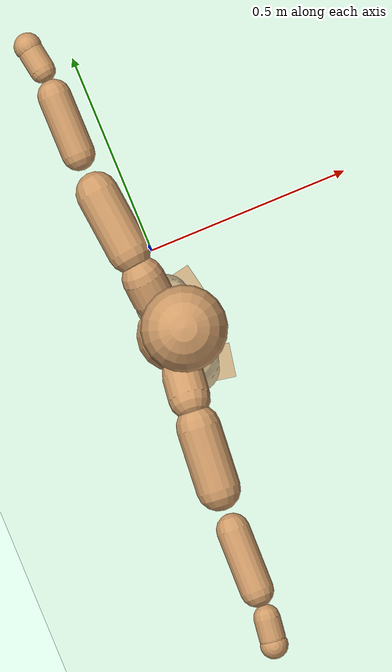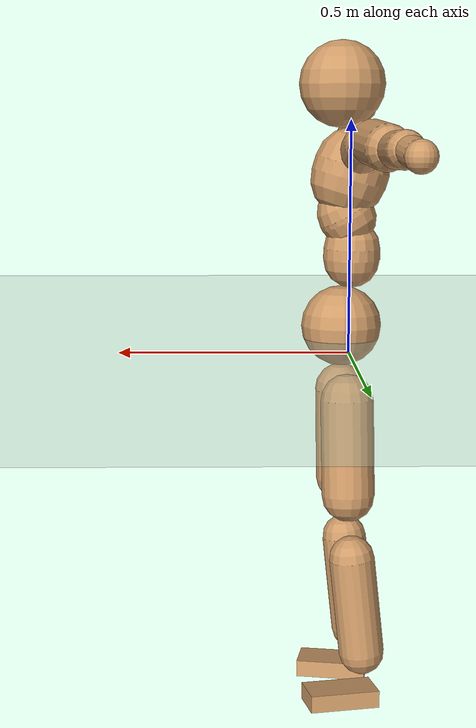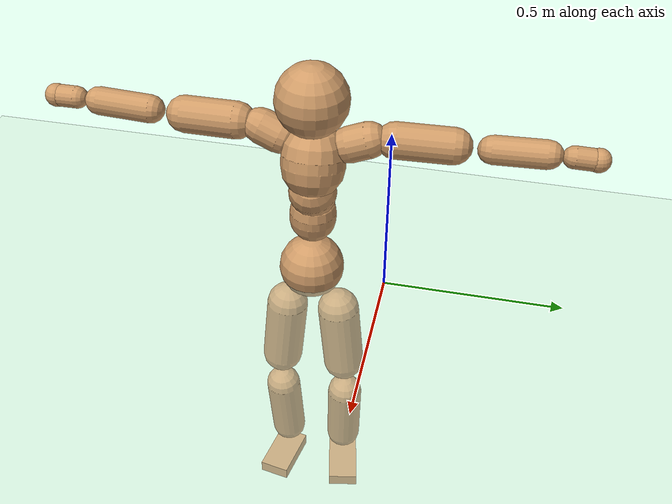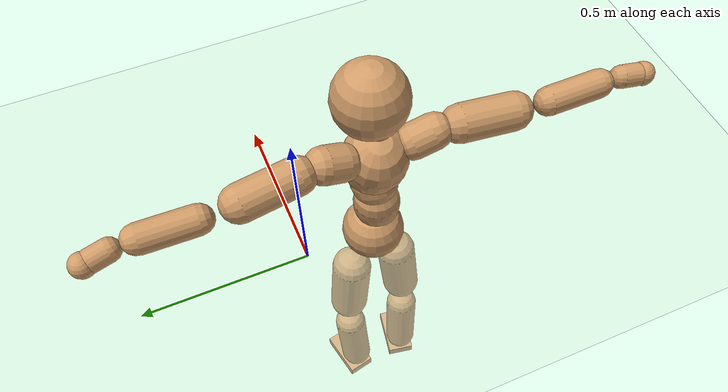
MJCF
<mujoco model="humanoid">
  <compiler coordinate="local"/>
  <default>
    <joint damping="0.0" armature="0.01" stiffness="0.0" limited="true"/>
    <geom conaffinity="1" condim="3" contype="7" margin="0.001" rgba="0.8 0.6 .4 1"/>
  </default>
  <asset>
    <texture type="skybox" builtin="gradient" rgb1=".4 .5 .6" rgb2="0 0 0" width="100" height="100"/>
    <texture builtin="flat" height="1278" mark="cross" markrgb="1 1 1" name="texgeom" random="0.01" rgb1="0.8 0.6 0.4" rgb2="0.8 0.6 0.4" type="cube" width="127"/>
    <texture builtin="checker" height="100" name="texplane" rgb1="0 0 0" rgb2="0.8 0.8 0.8" type="2d" width="100"/>
    <material name="MatPlane" reflectance="0.5" shininess="1" specular="1" texrepeat="60 60" texture="texplane"/>
    <material name="geom" texture="texgeom" texuniform="true"/>
  </asset>
  <worldbody>
    <light cutoff="100" diffuse="1 1 1" dir="-0 0 -1.3" directional="true" exponent="1" pos="0 0 1.3" specular=".1 .1 .1"/>
    <geom conaffinity="1" condim="3" name="floor" pos="0 0 0" rgba="0.8 0.9 0.8 1" size="100 100 .2" type="plane" material="MatPlane"/>
    <body name="Pelvis" pos="-0.0006 -0.2098 0.0279">
      <freejoint name="Pelvis"/>
      <geom type="sphere" contype="1" conaffinity="1" density="500" size="0.0922" pos="0.0000 0.0000 0.0000" name="Pelvis"/>
      <body name="L_Hip" pos="-0.008 0.071 -0.0893">
        <joint name="L_Hip_x" type="hinge" pos="0 0 0" axis="1 0 0" stiffness="800" damping="80" armature="0.02" range="-180.0000 180.0000"/>
        <joint name="L_Hip_y" type="hinge" pos="0 0 0" axis="0 1 0" stiffness="800" damping="80" armature="0.02" range="-180.0000 180.0000"/>
        <joint name="L_Hip_z" type="hinge" pos="0 0 0" axis="0 0 1" stiffness="800" damping="80" armature="0.02" range="-180.0000 180.0000"/>
        <geom type="capsule" contype="1" conaffinity="1" density="500" fromto="-0.0014 0.0061 -0.0729 -0.0055 0.0245 -0.2915" size="0.0608" name="L_Hip"/>
        <body name="L_Knee" pos="-0.0069 0.0307 -0.3644">
          <joint name="L_Knee_x" type="hinge" pos="0 0 0" axis="1 0 0" stiffness="800" damping="80" armature="0.02" range="-180.0000 180.0000"/>
          <joint name="L_Knee_y" type="hinge" pos="0 0 0" axis="0 1 0" stiffness="800" damping="80" armature="0.02" range="-180.0000 180.0000"/>
          <joint name="L_Knee_z" type="hinge" pos="0 0 0" axis="0 0 1" stiffness="800" damping="80" armature="0.02" range="-180.0000 180.0000"/>
          <geom type="capsule" contype="1" conaffinity="1" density="500" fromto="-0.0086 -0.0023 -0.0768 -0.0346 -0.0093 -0.3070" size="0.0525" name="L_Knee"/>
          <body name="L_Ankle" pos="-0.0432 -0.0116 -0.3838">
            <joint name="L_Ankle_x" type="hinge" pos="0 0 0" axis="1 0 0" stiffness="800" damping="80" armature="0.02" range="-180.0000 180.0000"/>
            <joint name="L_Ankle_y" type="hinge" pos="0 0 0" axis="0 1 0" stiffness="800" damping="80" armature="0.02" range="-180.0000 180.0000"/>
            <joint name="L_Ankle_z" type="hinge" pos="0 0 0" axis="0 0 1" stiffness="800" damping="80" armature="0.02" range="-180.0000 180.0000"/>
            <geom type="box" contype="1" conaffinity="1" density="500" pos="0.0572 0.0116 -0.0273" size="0.0818 0.0453 0.0201" quat="0.9950 0.0000 0.0000 0.0996" name="L_Ankle"/>
            <body name="L_Toe" pos="0.1143 0.0231 -0.0547">
              <joint name="L_Toe_x" type="hinge" pos="0 0 0" axis="1 0 0" stiffness="500" damping="50" armature="0.02" range="-180.0000 180.0000"/>
              <joint name="L_Toe_y" type="hinge" pos="0 0 0" axis="0 1 0" stiffness="500" damping="50" armature="0.02" range="-180.0000 180.0000"/>
              <joint name="L_Toe_z" type="hinge" pos="0 0 0" axis="0 0 1" stiffness="500" damping="50" armature="0.02" range="-180.0000 180.0000"/>
              <geom type="box" contype="1" conaffinity="1" density="500" pos="0.0000 0.0000 0.0267" size="0.0009 0.0023 0.001" quat="0.9944 0.0000 0.0000 0.1061" name="L_Toe"/>
            </body>
          </body>
        </body>
      </body>
      <body name="R_Hip" pos="-0.0047 -0.0687 -0.0887">
        <joint name="R_Hip_x" type="hinge" pos="0 0 0" axis="1 0 0" stiffness="800" damping="80" armature="0.02" range="-180.0000 180.0000"/>
        <joint name="R_Hip_y" type="hinge" pos="0 0 0" axis="0 1 0" stiffness="800" damping="80" armature="0.02" range="-180.0000 180.0000"/>
        <joint name="R_Hip_z" type="hinge" pos="0 0 0" axis="0 0 1" stiffness="800" damping="80" armature="0.02" range="-180.0000 180.0000"/>
        <geom type="capsule" contype="1" conaffinity="1" density="500" fromto="-0.0019 -0.0072 -0.0742 -0.0074 -0.0289 -0.2966" size="0.06" name="R_Hip"/>
        <body name="R_Knee" pos="-0.0093 -0.0361 -0.3708">
          <joint name="R_Knee_x" type="hinge" pos="0 0 0" axis="1 0 0" stiffness="800" damping="80" armature="0.02" range="-180.0000 180.0000"/>
          <joint name="R_Knee_y" type="hinge" pos="0 0 0" axis="0 1 0" stiffness="800" damping="80" armature="0.02" range="-180.0000 180.0000"/>
          <joint name="R_Knee_z" type="hinge" pos="0 0 0" axis="0 0 1" stiffness="800" damping="80" armature="0.02" range="-180.0000 180.0000"/>
          <geom type="capsule" contype="1" conaffinity="1" density="500" fromto="-0.0083 0.0028 -0.0769 -0.0333 0.0114 -0.3074" size="0.0528" name="R_Knee"/>
          <body name="R_Ankle" pos="-0.0416 0.0142 -0.3843">
            <joint name="R_Ankle_x" type="hinge" pos="0 0 0" axis="1 0 0" stiffness="800" damping="80" armature="0.02" range="-180.0000 180.0000"/>
            <joint name="R_Ankle_y" type="hinge" pos="0 0 0" axis="0 1 0" stiffness="800" damping="80" armature="0.02" range="-180.0000 180.0000"/>
            <joint name="R_Ankle_z" type="hinge" pos="0 0 0" axis="0 0 1" stiffness="800" damping="80" armature="0.02" range="-180.0000 180.0000"/>
            <geom type="box" contype="1" conaffinity="1" density="500" pos="0.0589 -0.0109 -0.0232" size="0.083 0.0459 0.0198" quat="0.9958 0.0000 0.0000 -0.0917" name="R_Ankle"/>
            <body name="R_Toe" pos="0.1179 -0.0219 -0.0464">
              <joint name="R_Toe_x" type="hinge" pos="0 0 0" axis="1 0 0" stiffness="500" damping="50" armature="0.02" range="-180.0000 180.0000"/>
              <joint name="R_Toe_y" type="hinge" pos="0 0 0" axis="0 1 0" stiffness="500" damping="50" armature="0.02" range="-180.0000 180.0000"/>
              <joint name="R_Toe_z" type="hinge" pos="0 0 0" axis="0 0 1" stiffness="500" damping="50" armature="0.02" range="-180.0000 180.0000"/>
              <geom type="box" contype="1" conaffinity="1" density="500" pos="0.0000 0.0000 0.0250" size="0.0009 0.0023 0.0011" quat="0.9966 0.0000 0.0000 -0.0821" name="R_Toe"/>
            </body>
          </body>
        </body>
      </body>
      <body name="Torso" pos="-0.0218 -0.0024 0.1027">
        <joint name="Torso_x" type="hinge" pos="0 0 0" axis="1 0 0" stiffness="1000" damping="100" armature="0.02" range="-180.0000 180.0000"/>
        <joint name="Torso_y" type="hinge" pos="0 0 0" axis="0 1 0" stiffness="1000" damping="100" armature="0.02" range="-180.0000 180.0000"/>
        <joint name="Torso_z" type="hinge" pos="0 0 0" axis="0 0 1" stiffness="1000" damping="100" armature="0.02" range="-180.0000 180.0000"/>
        <geom type="capsule" contype="1" conaffinity="1" density="500" fromto="-0.0008 0.0020 0.0756 -0.0005 0.0013 0.0504" size="0.065007" name="Torso"/>
        <body name="Spine" pos="-0.0013 0.0033 0.126">
          <joint name="Spine_x" type="hinge" pos="0 0 0" axis="1 0 0" stiffness="1000" damping="100" armature="0.02" range="-180.0000 180.0000"/>
          <joint name="Spine_y" type="hinge" pos="0 0 0" axis="0 1 0" stiffness="1000" damping="100" armature="0.02" range="-180.0000 180.0000"/>
          <joint name="Spine_z" type="hinge" pos="0 0 0" axis="0 0 1" stiffness="1000" damping="100" armature="0.02" range="-180.0000 180.0000"/>
          <geom type="capsule" contype="1" conaffinity="1" density="500" fromto="0.0165 0.0012 0.0293 0.0110 0.0008 0.0195" size="0.06603" name="Spine"/>
          <body name="Chest" pos="0.0275 0.002 0.0488">
            <joint name="Chest_x" type="hinge" pos="0 0 0" axis="1 0 0" stiffness="1000" damping="100" armature="0.02" range="-180.0000 180.0000"/>
            <joint name="Chest_y" type="hinge" pos="0 0 0" axis="0 1 0" stiffness="1000" damping="100" armature="0.02" range="-180.0000 180.0000"/>
            <joint name="Chest_z" type="hinge" pos="0 0 0" axis="0 0 1" stiffness="1000" damping="100" armature="0.02" range="-180.0000 180.0000"/>
            <geom type="capsule" contype="1" conaffinity="1" density="500" fromto="-0.0262 -0.0007 0.0885 -0.0174 -0.0005 0.0590" size="0.087885" name="Chest"/>
            <body name="Neck" pos="-0.0508 -0.0018 0.2087">
              <joint name="Neck_x" type="hinge" pos="0 0 0" axis="1 0 0" stiffness="500" damping="50" armature="0.02" range="-180.0000 180.0000"/>
              <joint name="Neck_y" type="hinge" pos="0 0 0" axis="0 1 0" stiffness="500" damping="50" armature="0.02" range="-180.0000 180.0000"/>
              <joint name="Neck_z" type="hinge" pos="0 0 0" axis="0 0 1" stiffness="500" damping="50" armature="0.02" range="-180.0000 180.0000"/>
              <geom type="capsule" contype="1" conaffinity="1" density="500" fromto="0.0101 0.0008 0.0124 0.0402 0.0030 0.0496" size="0.038037" name="Neck"/>
              <body name="Head" pos="0.0503 0.0038 0.062">
                <joint name="Head_x" type="hinge" pos="0 0 0" axis="1 0 0" stiffness="500" damping="50" armature="0.02" range="-180.0000 180.0000"/>
                <joint name="Head_y" type="hinge" pos="0 0 0" axis="0 1 0" stiffness="500" damping="50" armature="0.02" range="-180.0000 180.0000"/>
                <joint name="Head_z" type="hinge" pos="0 0 0" axis="0 0 1" stiffness="500" damping="50" armature="0.02" range="-180.0000 180.0000"/>
                <geom type="sphere" contype="1" conaffinity="1" density="500" size="0.0979" pos="0.0000 0.0000 0.0000" name="Head"/>
              </body>
            </body>
            <body name="L_Thorax" pos="-0.0375 0.0751 0.1181">
              <joint name="L_Thorax_x" type="hinge" pos="0 0 0" axis="1 0 0" stiffness="500" damping="50" armature="0.02" range="-180.0000 180.0000"/>
              <joint name="L_Thorax_y" type="hinge" pos="0 0 0" axis="0 1 0" stiffness="500" damping="50" armature="0.02" range="-180.0000 180.0000"/>
              <joint name="L_Thorax_z" type="hinge" pos="0 0 0" axis="0 0 1" stiffness="500" damping="50" armature="0.02" range="-180.0000 180.0000"/>
              <geom type="capsule" contype="1" conaffinity="1" density="500" fromto="-0.0014 0.0170 0.0063 -0.0056 0.0679 0.0252" size="0.0494" name="L_Thorax"/>
              <body name="L_Shoulder" pos="-0.007 0.0849 0.0315">
                <joint name="L_Shoulder_x" type="hinge" pos="0 0 0" axis="1 0 0" stiffness="500" damping="50" armature="0.02" range="-720.0000 720.0000"/>
                <joint name="L_Shoulder_y" type="hinge" pos="0 0 0" axis="0 1 0" stiffness="500" damping="50" armature="0.02" range="-720.0000 720.0000"/>
                <joint name="L_Shoulder_z" type="hinge" pos="0 0 0" axis="0 0 1" stiffness="500" damping="50" armature="0.02" range="-720.0000 720.0000"/>
                <geom type="capsule" contype="1" conaffinity="1" density="500" fromto="-0.0054 0.0502 -0.0023 -0.0215 0.2007 -0.0092" size="0.0495" name="L_Shoulder"/>
                <body name="L_Elbow" pos="-0.0269 0.2509 -0.0115">
                  <joint name="L_Elbow_x" type="hinge" pos="0 0 0" axis="1 0 0" stiffness="500" damping="50" armature="0.02" range="-720.0000 720.0000"/>
                  <joint name="L_Elbow_y" type="hinge" pos="0 0 0" axis="0 1 0" stiffness="500" damping="50" armature="0.02" range="-720.0000 720.0000"/>
                  <joint name="L_Elbow_z" type="hinge" pos="0 0 0" axis="0 0 1" stiffness="500" damping="50" armature="0.02" range="-720.0000 720.0000"/>
                  <geom type="capsule" contype="1" conaffinity="1" density="500" fromto="-0.0000 0.0474 0.0018 -0.0001 0.1897 0.0072" size="0.0384" name="L_Elbow"/>
                  <body name="L_Wrist" pos="-0.0002 0.2371 0.009">
                    <joint name="L_Wrist_x" type="hinge" pos="0 0 0" axis="1 0 0" stiffness="300" damping="30" armature="0.02" range="-180.0000 180.0000"/>
                    <joint name="L_Wrist_y" type="hinge" pos="0 0 0" axis="0 1 0" stiffness="300" damping="30" armature="0.02" range="-180.0000 180.0000"/>
                    <joint name="L_Wrist_z" type="hinge" pos="0 0 0" axis="0 0 1" stiffness="300" damping="30" armature="0.02" range="-180.0000 180.0000"/>
                    <geom type="capsule" contype="1" conaffinity="1" density="500" fromto="-0.0026 0.0158 -0.0019 -0.0105 0.0634 -0.0077" size="0.0299" name="L_Wrist"/>
                    <body name="L_Hand" pos="-0.0131 0.0792 -0.0096">
                      <joint name="L_Hand_x" type="hinge" pos="0 0 0" axis="1 0 0" stiffness="300" damping="30" armature="0.02" range="-180.0000 180.0000"/>
                      <joint name="L_Hand_y" type="hinge" pos="0 0 0" axis="0 1 0" stiffness="300" damping="30" armature="0.02" range="-180.0000 180.0000"/>
                      <joint name="L_Hand_z" type="hinge" pos="0 0 0" axis="0 0 1" stiffness="300" damping="30" armature="0.02" range="-180.0000 180.0000"/>
                      <geom type="sphere" contype="1" conaffinity="1" density="500" size="0.0319" pos="0.0000 0.0000 0.0000" name="L_Hand"/>
                    </body>
                  </body>
                </body>
              </body>
            </body>
            <body name="R_Thorax" pos="-0.0425 -0.0769 0.1159">
              <joint name="R_Thorax_x" type="hinge" pos="0 0 0" axis="1 0 0" stiffness="500" damping="50" armature="0.02" range="-180.0000 180.0000"/>
              <joint name="R_Thorax_y" type="hinge" pos="0 0 0" axis="0 1 0" stiffness="500" damping="50" armature="0.02" range="-180.0000 180.0000"/>
              <joint name="R_Thorax_z" type="hinge" pos="0 0 0" axis="0 0 1" stiffness="500" damping="50" armature="0.02" range="-180.0000 180.0000"/>
              <geom type="capsule" contype="1" conaffinity="1" density="500" fromto="-0.0019 -0.0178 0.0066 -0.0078 -0.0711 0.0263" size="0.0486" name="R_Thorax"/>
              <body name="R_Shoulder" pos="-0.0097 -0.0888 0.0329">
                <joint name="R_Shoulder_x" type="hinge" pos="0 0 0" axis="1 0 0" stiffness="500" damping="50" armature="0.02" range="-720.0000 720.0000"/>
                <joint name="R_Shoulder_y" type="hinge" pos="0 0 0" axis="0 1 0" stiffness="500" damping="50" armature="0.02" range="-720.0000 720.0000"/>
                <joint name="R_Shoulder_z" type="hinge" pos="0 0 0" axis="0 0 1" stiffness="500" damping="50" armature="0.02" range="-720.0000 720.0000"/>
                <geom type="capsule" contype="1" conaffinity="1" density="500" fromto="-0.0040 -0.0492 -0.0027 -0.0158 -0.1969 -0.0107" size="0.051" name="R_Shoulder"/>
                <body name="R_Elbow" pos="-0.0198 -0.2462 -0.0133">
                  <joint name="R_Elbow_x" type="hinge" pos="0 0 0" axis="1 0 0" stiffness="500" damping="50" armature="0.02" range="-720.0000 720.0000"/>
                  <joint name="R_Elbow_y" type="hinge" pos="0 0 0" axis="0 1 0" stiffness="500" damping="50" armature="0.02" range="-720.0000 720.0000"/>
                  <joint name="R_Elbow_z" type="hinge" pos="0 0 0" axis="0 0 1" stiffness="500" damping="50" armature="0.02" range="-720.0000 720.0000"/>
                  <geom type="capsule" contype="1" conaffinity="1" density="500" fromto="-0.0008 -0.0490 0.0017 -0.0031 -0.1961 0.0069" size="0.0387" name="R_Elbow"/>
                  <body name="R_Wrist" pos="-0.0038 -0.2451 0.0087">
                    <joint name="R_Wrist_x" type="hinge" pos="0 0 0" axis="1 0 0" stiffness="300" damping="30" armature="0.02" range="-180.0000 180.0000"/>
                    <joint name="R_Wrist_y" type="hinge" pos="0 0 0" axis="0 1 0" stiffness="300" damping="30" armature="0.02" range="-180.0000 180.0000"/>
                    <joint name="R_Wrist_z" type="hinge" pos="0 0 0" axis="0 0 1" stiffness="300" damping="30" armature="0.02" range="-180.0000 180.0000"/>
                    <geom type="capsule" contype="1" conaffinity="1" density="500" fromto="-0.0021 -0.0161 -0.0014 -0.0083 -0.0643 -0.0058" size="0.0308" name="R_Wrist"/>
                    <body name="R_Hand" pos="-0.0104 -0.0803 -0.0072">
                      <joint name="R_Hand_x" type="hinge" pos="0 0 0" axis="1 0 0" stiffness="300" damping="30" armature="0.02" range="-180.0000 180.0000"/>
                      <joint name="R_Hand_y" type="hinge" pos="0 0 0" axis="0 1 0" stiffness="300" damping="30" armature="0.02" range="-180.0000 180.0000"/>
                      <joint name="R_Hand_z" type="hinge" pos="0 0 0" axis="0 0 1" stiffness="300" damping="30" armature="0.02" range="-180.0000 180.0000"/>
                      <geom type="sphere" contype="1" conaffinity="1" density="500" size="0.0323" pos="0.0000 0.0000 0.0000" name="R_Hand"/>
                    </body>
                  </body>
                </body>
              </body>
            </body>
          </body>
        </body>
      </body>
    </body>
  </worldbody>
  <actuator>
    <motor name="L_Hip_x" joint="L_Hip_x" gear="500"/>
    <motor name="L_Hip_y" joint="L_Hip_y" gear="500"/>
    <motor name="L_Hip_z" joint="L_Hip_z" gear="500"/>
    <motor name="L_Knee_x" joint="L_Knee_x" gear="500"/>
    <motor name="L_Knee_y" joint="L_Knee_y" gear="500"/>
    <motor name="L_Knee_z" joint="L_Knee_z" gear="500"/>
    <motor name="L_Ankle_x" joint="L_Ankle_x" gear="500"/>
    <motor name="L_Ankle_y" joint="L_Ankle_y" gear="500"/>
    <motor name="L_Ankle_z" joint="L_Ankle_z" gear="500"/>
    <motor name="L_Toe_x" joint="L_Toe_x" gear="500"/>
    <motor name="L_Toe_y" joint="L_Toe_y" gear="500"/>
    <motor name="L_Toe_z" joint="L_Toe_z" gear="500"/>
    <motor name="R_Hip_x" joint="R_Hip_x" gear="500"/>
    <motor name="R_Hip_y" joint="R_Hip_y" gear="500"/>
    <motor name="R_Hip_z" joint="R_Hip_z" gear="500"/>
    <motor name="R_Knee_x" joint="R_Knee_x" gear="500"/>
    <motor name="R_Knee_y" joint="R_Knee_y" gear="500"/>
    <motor name="R_Knee_z" joint="R_Knee_z" gear="500"/>
    <motor name="R_Ankle_x" joint="R_Ankle_x" gear="500"/>
    <motor name="R_Ankle_y" joint="R_Ankle_y" gear="500"/>
    <motor name="R_Ankle_z" joint="R_Ankle_z" gear="500"/>
    <motor name="R_Toe_x" joint="R_Toe_x" gear="500"/>
    <motor name="R_Toe_y" joint="R_Toe_y" gear="500"/>
    <motor name="R_Toe_z" joint="R_Toe_z" gear="500"/>
    <motor name="Torso_x" joint="Torso_x" gear="500"/>
    <motor name="Torso_y" joint="Torso_y" gear="500"/>
    <motor name="Torso_z" joint="Torso_z" gear="500"/>
    <motor name="Spine_x" joint="Spine_x" gear="500"/>
    <motor name="Spine_y" joint="Spine_y" gear="500"/>
    <motor name="Spine_z" joint="Spine_z" gear="500"/>
    <motor name="Chest_x" joint="Chest_x" gear="500"/>
    <motor name="Chest_y" joint="Chest_y" gear="500"/>
    <motor name="Chest_z" joint="Chest_z" gear="500"/>
    <motor name="Neck_x" joint="Neck_x" gear="500"/>
    <motor name="Neck_y" joint="Neck_y" gear="500"/>
    <motor name="Neck_z" joint="Neck_z" gear="500"/>
    <motor name="Head_x" joint="Head_x" gear="500"/>
    <motor name="Head_y" joint="Head_y" gear="500"/>
    <motor name="Head_z" joint="Head_z" gear="500"/>
    <motor name="L_Thorax_x" joint="L_Thorax_x" gear="500"/>
    <motor name="L_Thorax_y" joint="L_Thorax_y" gear="500"/>
    <motor name="L_Thorax_z" joint="L_Thorax_z" gear="500"/>
    <motor name="L_Shoulder_x" joint="L_Shoulder_x" gear="500"/>
    <motor name="L_Shoulder_y" joint="L_Shoulder_y" gear="500"/>
    <motor name="L_Shoulder_z" joint="L_Shoulder_z" gear="500"/>
    <motor name="L_Elbow_x" joint="L_Elbow_x" gear="500"/>
    <motor name="L_Elbow_y" joint="L_Elbow_y" gear="500"/>
    <motor name="L_Elbow_z" joint="L_Elbow_z" gear="500"/>
    <motor name="L_Wrist_x" joint="L_Wrist_x" gear="500"/>
    <motor name="L_Wrist_y" joint="L_Wrist_y" gear="500"/>
    <motor name="L_Wrist_z" joint="L_Wrist_z" gear="500"/>
    <motor name="L_Hand_x" joint="L_Hand_x" gear="500"/>
    <motor name="L_Hand_y" joint="L_Hand_y" gear="500"/>
    <motor name="L_Hand_z" joint="L_Hand_z" gear="500"/>
    <motor name="R_Thorax_x" joint="R_Thorax_x" gear="500"/>
    <motor name="R_Thorax_y" joint="R_Thorax_y" gear="500"/>
    <motor name="R_Thorax_z" joint="R_Thorax_z" gear="500"/>
    <motor name="R_Shoulder_x" joint="R_Shoulder_x" gear="500"/>
    <motor name="R_Shoulder_y" joint="R_Shoulder_y" gear="500"/>
    <motor name="R_Shoulder_z" joint="R_Shoulder_z" gear="500"/>
    <motor name="R_Elbow_x" joint="R_Elbow_x" gear="500"/>
    <motor name="R_Elbow_y" joint="R_Elbow_y" gear="500"/>
    <motor name="R_Elbow_z" joint="R_Elbow_z" gear="500"/>
    <motor name="R_Wrist_x" joint="R_Wrist_x" gear="500"/>
    <motor name="R_Wrist_y" joint="R_Wrist_y" gear="500"/>
    <motor name="R_Wrist_z" joint="R_Wrist_z" gear="500"/>
    <motor name="R_Hand_x" joint="R_Hand_x" gear="500"/>
    <motor name="R_Hand_y" joint="R_Hand_y" gear="500"/>
    <motor name="R_Hand_z" joint="R_Hand_z" gear="500"/>
  </actuator>
  <contact>
    <exclude body1="Torso" body2="Chest"/>
    <exclude body1="Head" body2="Chest"/>
    <exclude body1="R_Knee" body2="R_Toe"/>
    <exclude body1="R_Knee" body2="L_Ankle"/>
    <exclude body1="R_Knee" body2="L_Toe"/>
    <exclude body1="L_Knee" body2="L_Toe"/>
    <exclude body1="L_Knee" body2="R_Ankle"/>
    <exclude body1="L_Knee" body2="R_Toe"/>
    <exclude body1="L_Shoulder" body2="Chest"/>
    <exclude body1="R_Shoulder" body2="Chest"/>
  </contact>
  <sensor/>
  <size njmax="700" nconmax="700"/>
</mujoco>
